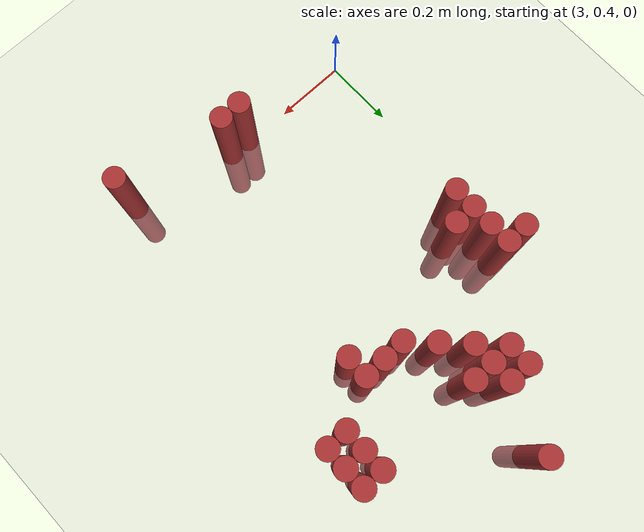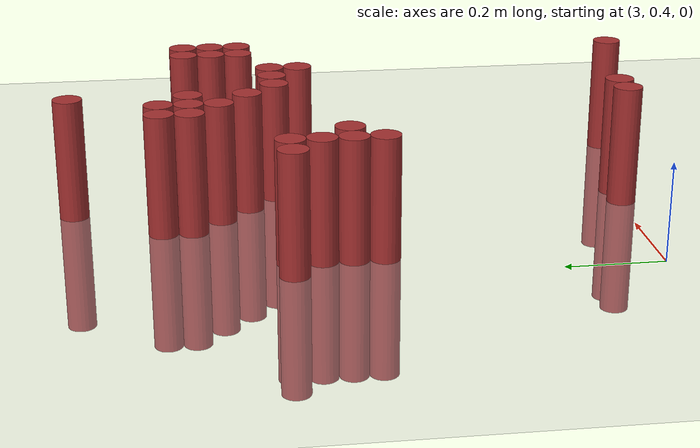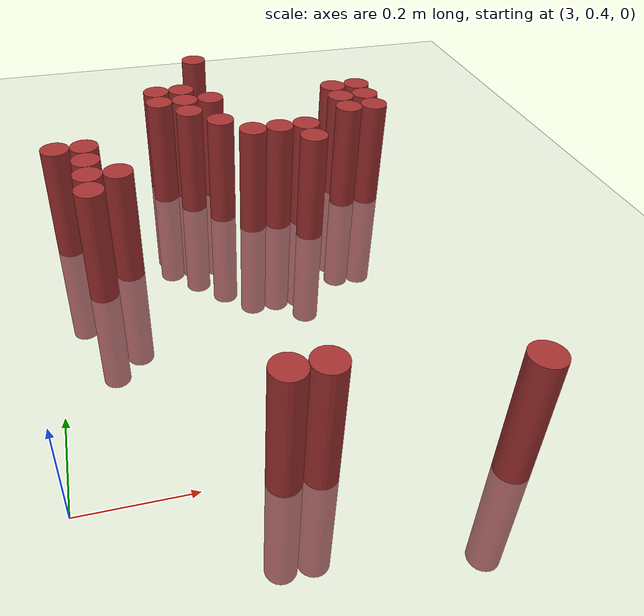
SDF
<sdf version="1.6">
 <world name="default">
  <model name="ground_plane">
   <static>1</static>
   <link name="link">
    <collision name="collision">
     <geometry><plane><normal>0 0 1</normal><size>100 100</size></plane></geometry>
     <surface><friction><ode><mu>100</mu><mu2>50</mu2></ode></friction></surface>
    </collision>
    <visual name="visual">
     <cast_shadows>0</cast_shadows>
     <geometry><plane><normal>0 0 1</normal><size>100 100</size></plane></geometry>
     <material>
      <script><uri>file://media/materials/scripts/gazebo.material</uri><name>Gazebo/Grey</name></script>
     </material>
    </visual>
   </link>
  </model>
  <model name="unit_cylinder_153">
   <static>1</static>
   <pose>3.390000 1.530000 0.000000 0.000000 0.000000 0.000000</pose>
   <link name="link">
    <inertial>
     <mass>1</mass>
     <inertia><ixx>0.145833</ixx><ixy>0</ixy><ixz>0</ixz><iyy>0.145833</iyy><iyz>0</iyz><izz>0.125</izz></inertia>
    </inertial>
    <collision name="collision">
     <geometry><cylinder><radius>0.030000</radius><length>0.5</length></cylinder></geometry>
    </collision>
    <visual name="visual">
     <geometry><cylinder><radius>0.030000</radius><length>0.5</length></cylinder></geometry>
     <material>
      <ambient>0.648000 0.192000 0.192000 1</ambient>
      <diffuse>0.648000 0.192000 0.192000 1</diffuse>
     </material>
     <material>
      <script><name>Gazebo/Grey</name><uri>file://media/materials/scripts/gazebo.material</uri></script>
     </material>
    </visual>
   </link>
  </model>
  <model name="unit_cylinder_166">
   <static>1</static>
   <pose>3.270000 1.350000 0.000000 0.000000 0.000000 0.000000</pose>
   <link name="link">
    <inertial>
     <mass>1</mass>
     <inertia><ixx>0.145833</ixx><ixy>0</ixy><ixz>0</ixz><iyy>0.145833</iyy><iyz>0</iyz><izz>0.125</izz></inertia>
    </inertial>
    <collision name="collision">
     <geometry><cylinder><radius>0.030000</radius><length>0.5</length></cylinder></geometry>
    </collision>
    <visual name="visual">
     <geometry><cylinder><radius>0.030000</radius><length>0.5</length></cylinder></geometry>
     <material>
      <ambient>0.648000 0.192000 0.192000 1</ambient>
      <diffuse>0.648000 0.192000 0.192000 1</diffuse>
     </material>
     <material>
      <script><name>Gazebo/Grey</name><uri>file://media/materials/scripts/gazebo.material</uri></script>
     </material>
    </visual>
   </link>
  </model>
  <model name="unit_cylinder_167">
   <static>1</static>
   <pose>3.330000 1.350000 0.000000 0.000000 0.000000 0.000000</pose>
   <link name="link">
    <inertial>
     <mass>1</mass>
     <inertia><ixx>0.145833</ixx><ixy>0</ixy><ixz>0</ixz><iyy>0.145833</iyy><iyz>0</iyz><izz>0.125</izz></inertia>
    </inertial>
    <collision name="collision">
     <geometry><cylinder><radius>0.030000</radius><length>0.5</length></cylinder></geometry>
    </collision>
    <visual name="visual">
     <geometry><cylinder><radius>0.030000</radius><length>0.5</length></cylinder></geometry>
     <material>
      <ambient>0.648000 0.192000 0.192000 1</ambient>
      <diffuse>0.648000 0.192000 0.192000 1</diffuse>
     </material>
     <material>
      <script><name>Gazebo/Grey</name><uri>file://media/materials/scripts/gazebo.material</uri></script>
     </material>
    </visual>
   </link>
  </model>
  <model name="unit_cylinder_169">
   <static>1</static>
   <pose>3.270000 1.290000 0.000000 0.000000 0.000000 0.000000</pose>
   <link name="link">
    <inertial>
     <mass>1</mass>
     <inertia><ixx>0.145833</ixx><ixy>0</ixy><ixz>0</ixz><iyy>0.145833</iyy><iyz>0</iyz><izz>0.125</izz></inertia>
    </inertial>
    <collision name="collision">
     <geometry><cylinder><radius>0.030000</radius><length>0.5</length></cylinder></geometry>
    </collision>
    <visual name="visual">
     <geometry><cylinder><radius>0.030000</radius><length>0.5</length></cylinder></geometry>
     <material>
      <ambient>0.648000 0.192000 0.192000 1</ambient>
      <diffuse>0.648000 0.192000 0.192000 1</diffuse>
     </material>
     <material>
      <script><name>Gazebo/Grey</name><uri>file://media/materials/scripts/gazebo.material</uri></script>
     </material>
    </visual>
   </link>
  </model>
  <model name="unit_cylinder_170">
   <static>1</static>
   <pose>3.330000 1.290000 0.000000 0.000000 0.000000 0.000000</pose>
   <link name="link">
    <inertial>
     <mass>1</mass>
     <inertia><ixx>0.145833</ixx><ixy>0</ixy><ixz>0</ixz><iyy>0.145833</iyy><iyz>0</iyz><izz>0.125</izz></inertia>
    </inertial>
    <collision name="collision">
     <geometry><cylinder><radius>0.030000</radius><length>0.5</length></cylinder></geometry>
    </collision>
    <visual name="visual">
     <geometry><cylinder><radius>0.030000</radius><length>0.5</length></cylinder></geometry>
     <material>
      <ambient>0.648000 0.192000 0.192000 1</ambient>
      <diffuse>0.648000 0.192000 0.192000 1</diffuse>
     </material>
     <material>
      <script><name>Gazebo/Grey</name><uri>file://media/materials/scripts/gazebo.material</uri></script>
     </material>
    </visual>
   </link>
  </model>
  <model name="unit_cylinder_171">
   <static>1</static>
   <pose>3.390000 1.290000 0.000000 0.000000 0.000000 0.000000</pose>
   <link name="link">
    <inertial>
     <mass>1</mass>
     <inertia><ixx>0.145833</ixx><ixy>0</ixy><ixz>0</ixz><iyy>0.145833</iyy><iyz>0</iyz><izz>0.125</izz></inertia>
    </inertial>
    <collision name="collision">
     <geometry><cylinder><radius>0.030000</radius><length>0.5</length></cylinder></geometry>
    </collision>
    <visual name="visual">
     <geometry><cylinder><radius>0.030000</radius><length>0.5</length></cylinder></geometry>
     <material>
      <ambient>0.648000 0.192000 0.192000 1</ambient>
      <diffuse>0.648000 0.192000 0.192000 1</diffuse>
     </material>
     <material>
      <script><name>Gazebo/Grey</name><uri>file://media/materials/scripts/gazebo.material</uri></script>
     </material>
    </visual>
   </link>
  </model>
  <model name="unit_cylinder_172">
   <static>1</static>
   <pose>3.690000 1.290000 0.000000 0.000000 0.000000 0.000000</pose>
   <link name="link">
    <inertial>
     <mass>1</mass>
     <inertia><ixx>0.145833</ixx><ixy>0</ixy><ixz>0</ixz><iyy>0.145833</iyy><iyz>0</iyz><izz>0.125</izz></inertia>
    </inertial>
    <collision name="collision">
     <geometry><cylinder><radius>0.030000</radius><length>0.5</length></cylinder></geometry>
    </collision>
    <visual name="visual">
     <geometry><cylinder><radius>0.030000</radius><length>0.5</length></cylinder></geometry>
     <material>
      <ambient>0.648000 0.192000 0.192000 1</ambient>
      <diffuse>0.648000 0.192000 0.192000 1</diffuse>
     </material>
     <material>
      <script><name>Gazebo/Grey</name><uri>file://media/materials/scripts/gazebo.material</uri></script>
     </material>
    </visual>
   </link>
  </model>
  <model name="unit_cylinder_173">
   <static>1</static>
   <pose>3.750000 1.290000 0.000000 0.000000 0.000000 0.000000</pose>
   <link name="link">
    <inertial>
     <mass>1</mass>
     <inertia><ixx>0.145833</ixx><ixy>0</ixy><ixz>0</ixz><iyy>0.145833</iyy><iyz>0</iyz><izz>0.125</izz></inertia>
    </inertial>
    <collision name="collision">
     <geometry><cylinder><radius>0.030000</radius><length>0.5</length></cylinder></geometry>
    </collision>
    <visual name="visual">
     <geometry><cylinder><radius>0.030000</radius><length>0.5</length></cylinder></geometry>
     <material>
      <ambient>0.648000 0.192000 0.192000 1</ambient>
      <diffuse>0.648000 0.192000 0.192000 1</diffuse>
     </material>
     <material>
      <script><name>Gazebo/Grey</name><uri>file://media/materials/scripts/gazebo.material</uri></script>
     </material>
    </visual>
   </link>
  </model>
  <model name="unit_cylinder_174">
   <static>1</static>
   <pose>3.330000 1.230000 0.000000 0.000000 0.000000 0.000000</pose>
   <link name="link">
    <inertial>
     <mass>1</mass>
     <inertia><ixx>0.145833</ixx><ixy>0</ixy><ixz>0</ixz><iyy>0.145833</iyy><iyz>0</iyz><izz>0.125</izz></inertia>
    </inertial>
    <collision name="collision">
     <geometry><cylinder><radius>0.030000</radius><length>0.5</length></cylinder></geometry>
    </collision>
    <visual name="visual">
     <geometry><cylinder><radius>0.030000</radius><length>0.5</length></cylinder></geometry>
     <material>
      <ambient>0.648000 0.192000 0.192000 1</ambient>
      <diffuse>0.648000 0.192000 0.192000 1</diffuse>
     </material>
     <material>
      <script><name>Gazebo/Grey</name><uri>file://media/materials/scripts/gazebo.material</uri></script>
     </material>
    </visual>
   </link>
  </model>
  <model name="unit_cylinder_175">
   <static>1</static>
   <pose>3.690000 1.230000 0.000000 0.000000 0.000000 0.000000</pose>
   <link name="link">
    <inertial>
     <mass>1</mass>
     <inertia><ixx>0.145833</ixx><ixy>0</ixy><ixz>0</ixz><iyy>0.145833</iyy><iyz>0</iyz><izz>0.125</izz></inertia>
    </inertial>
    <collision name="collision">
     <geometry><cylinder><radius>0.030000</radius><length>0.5</length></cylinder></geometry>
    </collision>
    <visual name="visual">
     <geometry><cylinder><radius>0.030000</radius><length>0.5</length></cylinder></geometry>
     <material>
      <ambient>0.648000 0.192000 0.192000 1</ambient>
      <diffuse>0.648000 0.192000 0.192000 1</diffuse>
     </material>
     <material>
      <script><name>Gazebo/Grey</name><uri>file://media/materials/scripts/gazebo.material</uri></script>
     </material>
    </visual>
   </link>
  </model>
  <model name="unit_cylinder_176">
   <static>1</static>
   <pose>3.750000 1.230000 0.000000 0.000000 0.000000 0.000000</pose>
   <link name="link">
    <inertial>
     <mass>1</mass>
     <inertia><ixx>0.145833</ixx><ixy>0</ixy><ixz>0</ixz><iyy>0.145833</iyy><iyz>0</iyz><izz>0.125</izz></inertia>
    </inertial>
    <collision name="collision">
     <geometry><cylinder><radius>0.030000</radius><length>0.5</length></cylinder></geometry>
    </collision>
    <visual name="visual">
     <geometry><cylinder><radius>0.030000</radius><length>0.5</length></cylinder></geometry>
     <material>
      <ambient>0.648000 0.192000 0.192000 1</ambient>
      <diffuse>0.648000 0.192000 0.192000 1</diffuse>
     </material>
     <material>
      <script><name>Gazebo/Grey</name><uri>file://media/materials/scripts/gazebo.material</uri></script>
     </material>
    </visual>
   </link>
  </model>
  <model name="unit_cylinder_179">
   <static>1</static>
   <pose>3.390000 1.170000 0.000000 0.000000 0.000000 0.000000</pose>
   <link name="link">
    <inertial>
     <mass>1</mass>
     <inertia><ixx>0.145833</ixx><ixy>0</ixy><ixz>0</ixz><iyy>0.145833</iyy><iyz>0</iyz><izz>0.125</izz></inertia>
    </inertial>
    <collision name="collision">
     <geometry><cylinder><radius>0.030000</radius><length>0.5</length></cylinder></geometry>
    </collision>
    <visual name="visual">
     <geometry><cylinder><radius>0.030000</radius><length>0.5</length></cylinder></geometry>
     <material>
      <ambient>0.648000 0.192000 0.192000 1</ambient>
      <diffuse>0.648000 0.192000 0.192000 1</diffuse>
     </material>
     <material>
      <script><name>Gazebo/Grey</name><uri>file://media/materials/scripts/gazebo.material</uri></script>
     </material>
    </visual>
   </link>
  </model>
  <model name="unit_cylinder_180">
   <static>1</static>
   <pose>3.690000 1.170000 0.000000 0.000000 0.000000 0.000000</pose>
   <link name="link">
    <inertial>
     <mass>1</mass>
     <inertia><ixx>0.145833</ixx><ixy>0</ixy><ixz>0</ixz><iyy>0.145833</iyy><iyz>0</iyz><izz>0.125</izz></inertia>
    </inertial>
    <collision name="collision">
     <geometry><cylinder><radius>0.030000</radius><length>0.5</length></cylinder></geometry>
    </collision>
    <visual name="visual">
     <geometry><cylinder><radius>0.030000</radius><length>0.5</length></cylinder></geometry>
     <material>
      <ambient>0.648000 0.192000 0.192000 1</ambient>
      <diffuse>0.648000 0.192000 0.192000 1</diffuse>
     </material>
     <material>
      <script><name>Gazebo/Grey</name><uri>file://media/materials/scripts/gazebo.material</uri></script>
     </material>
    </visual>
   </link>
  </model>
  <model name="unit_cylinder_181">
   <static>1</static>
   <pose>3.750000 1.170000 0.000000 0.000000 0.000000 0.000000</pose>
   <link name="link">
    <inertial>
     <mass>1</mass>
     <inertia><ixx>0.145833</ixx><ixy>0</ixy><ixz>0</ixz><iyy>0.145833</iyy><iyz>0</iyz><izz>0.125</izz></inertia>
    </inertial>
    <collision name="collision">
     <geometry><cylinder><radius>0.030000</radius><length>0.5</length></cylinder></geometry>
    </collision>
    <visual name="visual">
     <geometry><cylinder><radius>0.030000</radius><length>0.5</length></cylinder></geometry>
     <material>
      <ambient>0.648000 0.192000 0.192000 1</ambient>
      <diffuse>0.648000 0.192000 0.192000 1</diffuse>
     </material>
     <material>
      <script><name>Gazebo/Grey</name><uri>file://media/materials/scripts/gazebo.material</uri></script>
     </material>
    </visual>
   </link>
  </model>
  <model name="unit_cylinder_184">
   <static>1</static>
   <pose>3.030000 1.110000 0.000000 0.000000 0.000000 0.000000</pose>
   <link name="link">
    <inertial>
     <mass>1</mass>
     <inertia><ixx>0.145833</ixx><ixy>0</ixy><ixz>0</ixz><iyy>0.145833</iyy><iyz>0</iyz><izz>0.125</izz></inertia>
    </inertial>
    <collision name="collision">
     <geometry><cylinder><radius>0.030000</radius><length>0.5</length></cylinder></geometry>
    </collision>
    <visual name="visual">
     <geometry><cylinder><radius>0.030000</radius><length>0.5</length></cylinder></geometry>
     <material>
      <ambient>0.648000 0.192000 0.192000 1</ambient>
      <diffuse>0.648000 0.192000 0.192000 1</diffuse>
     </material>
     <material>
      <script><name>Gazebo/Grey</name><uri>file://media/materials/scripts/gazebo.material</uri></script>
     </material>
    </visual>
   </link>
  </model>
  <model name="unit_cylinder_185">
   <static>1</static>
   <pose>3.090000 1.110000 0.000000 0.000000 0.000000 0.000000</pose>
   <link name="link">
    <inertial>
     <mass>1</mass>
     <inertia><ixx>0.145833</ixx><ixy>0</ixy><ixz>0</ixz><iyy>0.145833</iyy><iyz>0</iyz><izz>0.125</izz></inertia>
    </inertial>
    <collision name="collision">
     <geometry><cylinder><radius>0.030000</radius><length>0.5</length></cylinder></geometry>
    </collision>
    <visual name="visual">
     <geometry><cylinder><radius>0.030000</radius><length>0.5</length></cylinder></geometry>
     <material>
      <ambient>0.648000 0.192000 0.192000 1</ambient>
      <diffuse>0.648000 0.192000 0.192000 1</diffuse>
     </material>
     <material>
      <script><name>Gazebo/Grey</name><uri>file://media/materials/scripts/gazebo.material</uri></script>
     </material>
    </visual>
   </link>
  </model>
  <model name="unit_cylinder_186">
   <static>1</static>
   <pose>3.450000 1.110000 0.000000 0.000000 0.000000 0.000000</pose>
   <link name="link">
    <inertial>
     <mass>1</mass>
     <inertia><ixx>0.145833</ixx><ixy>0</ixy><ixz>0</ixz><iyy>0.145833</iyy><iyz>0</iyz><izz>0.125</izz></inertia>
    </inertial>
    <collision name="collision">
     <geometry><cylinder><radius>0.030000</radius><length>0.5</length></cylinder></geometry>
    </collision>
    <visual name="visual">
     <geometry><cylinder><radius>0.030000</radius><length>0.5</length></cylinder></geometry>
     <material>
      <ambient>0.648000 0.192000 0.192000 1</ambient>
      <diffuse>0.648000 0.192000 0.192000 1</diffuse>
     </material>
     <material>
      <script><name>Gazebo/Grey</name><uri>file://media/materials/scripts/gazebo.material</uri></script>
     </material>
    </visual>
   </link>
  </model>
  <model name="unit_cylinder_187">
   <static>1</static>
   <pose>3.510000 1.110000 0.000000 0.000000 0.000000 0.000000</pose>
   <link name="link">
    <inertial>
     <mass>1</mass>
     <inertia><ixx>0.145833</ixx><ixy>0</ixy><ixz>0</ixz><iyy>0.145833</iyy><iyz>0</iyz><izz>0.125</izz></inertia>
    </inertial>
    <collision name="collision">
     <geometry><cylinder><radius>0.030000</radius><length>0.5</length></cylinder></geometry>
    </collision>
    <visual name="visual">
     <geometry><cylinder><radius>0.030000</radius><length>0.5</length></cylinder></geometry>
     <material>
      <ambient>0.648000 0.192000 0.192000 1</ambient>
      <diffuse>0.648000 0.192000 0.192000 1</diffuse>
     </material>
     <material>
      <script><name>Gazebo/Grey</name><uri>file://media/materials/scripts/gazebo.material</uri></script>
     </material>
    </visual>
   </link>
  </model>
  <model name="unit_cylinder_188">
   <static>1</static>
   <pose>3.570000 1.110000 0.000000 0.000000 0.000000 0.000000</pose>
   <link name="link">
    <inertial>
     <mass>1</mass>
     <inertia><ixx>0.145833</ixx><ixy>0</ixy><ixz>0</ixz><iyy>0.145833</iyy><iyz>0</iyz><izz>0.125</izz></inertia>
    </inertial>
    <collision name="collision">
     <geometry><cylinder><radius>0.030000</radius><length>0.5</length></cylinder></geometry>
    </collision>
    <visual name="visual">
     <geometry><cylinder><radius>0.030000</radius><length>0.5</length></cylinder></geometry>
     <material>
      <ambient>0.648000 0.192000 0.192000 1</ambient>
      <diffuse>0.648000 0.192000 0.192000 1</diffuse>
     </material>
     <material>
      <script><name>Gazebo/Grey</name><uri>file://media/materials/scripts/gazebo.material</uri></script>
     </material>
    </visual>
   </link>
  </model>
  <model name="unit_cylinder_193">
   <static>1</static>
   <pose>3.090000 1.050000 0.000000 0.000000 0.000000 0.000000</pose>
   <link name="link">
    <inertial>
     <mass>1</mass>
     <inertia><ixx>0.145833</ixx><ixy>0</ixy><ixz>0</ixz><iyy>0.145833</iyy><iyz>0</iyz><izz>0.125</izz></inertia>
    </inertial>
    <collision name="collision">
     <geometry><cylinder><radius>0.030000</radius><length>0.5</length></cylinder></geometry>
    </collision>
    <visual name="visual">
     <geometry><cylinder><radius>0.030000</radius><length>0.5</length></cylinder></geometry>
     <material>
      <ambient>0.648000 0.192000 0.192000 1</ambient>
      <diffuse>0.648000 0.192000 0.192000 1</diffuse>
     </material>
     <material>
      <script><name>Gazebo/Grey</name><uri>file://media/materials/scripts/gazebo.material</uri></script>
     </material>
    </visual>
   </link>
  </model>
  <model name="unit_cylinder_194">
   <static>1</static>
   <pose>3.570000 1.050000 0.000000 0.000000 0.000000 0.000000</pose>
   <link name="link">
    <inertial>
     <mass>1</mass>
     <inertia><ixx>0.145833</ixx><ixy>0</ixy><ixz>0</ixz><iyy>0.145833</iyy><iyz>0</iyz><izz>0.125</izz></inertia>
    </inertial>
    <collision name="collision">
     <geometry><cylinder><radius>0.030000</radius><length>0.5</length></cylinder></geometry>
    </collision>
    <visual name="visual">
     <geometry><cylinder><radius>0.030000</radius><length>0.5</length></cylinder></geometry>
     <material>
      <ambient>0.648000 0.192000 0.192000 1</ambient>
      <diffuse>0.648000 0.192000 0.192000 1</diffuse>
     </material>
     <material>
      <script><name>Gazebo/Grey</name><uri>file://media/materials/scripts/gazebo.material</uri></script>
     </material>
    </visual>
   </link>
  </model>
  <model name="unit_cylinder_197">
   <static>1</static>
   <pose>3.090000 0.990000 0.000000 0.000000 0.000000 0.000000</pose>
   <link name="link">
    <inertial>
     <mass>1</mass>
     <inertia><ixx>0.145833</ixx><ixy>0</ixy><ixz>0</ixz><iyy>0.145833</iyy><iyz>0</iyz><izz>0.125</izz></inertia>
    </inertial>
    <collision name="collision">
     <geometry><cylinder><radius>0.030000</radius><length>0.5</length></cylinder></geometry>
    </collision>
    <visual name="visual">
     <geometry><cylinder><radius>0.030000</radius><length>0.5</length></cylinder></geometry>
     <material>
      <ambient>0.648000 0.192000 0.192000 1</ambient>
      <diffuse>0.648000 0.192000 0.192000 1</diffuse>
     </material>
     <material>
      <script><name>Gazebo/Grey</name><uri>file://media/materials/scripts/gazebo.material</uri></script>
     </material>
    </visual>
   </link>
  </model>
  <model name="unit_cylinder_198">
   <static>1</static>
   <pose>3.150000 0.990000 0.000000 0.000000 0.000000 0.000000</pose>
   <link name="link">
    <inertial>
     <mass>1</mass>
     <inertia><ixx>0.145833</ixx><ixy>0</ixy><ixz>0</ixz><iyy>0.145833</iyy><iyz>0</iyz><izz>0.125</izz></inertia>
    </inertial>
    <collision name="collision">
     <geometry><cylinder><radius>0.030000</radius><length>0.5</length></cylinder></geometry>
    </collision>
    <visual name="visual">
     <geometry><cylinder><radius>0.030000</radius><length>0.5</length></cylinder></geometry>
     <material>
      <ambient>0.648000 0.192000 0.192000 1</ambient>
      <diffuse>0.648000 0.192000 0.192000 1</diffuse>
     </material>
     <material>
      <script><name>Gazebo/Grey</name><uri>file://media/materials/scripts/gazebo.material</uri></script>
     </material>
    </visual>
   </link>
  </model>
  <model name="unit_cylinder_201">
   <static>1</static>
   <pose>3.090000 0.930000 0.000000 0.000000 0.000000 0.000000</pose>
   <link name="link">
    <inertial>
     <mass>1</mass>
     <inertia><ixx>0.145833</ixx><ixy>0</ixy><ixz>0</ixz><iyy>0.145833</iyy><iyz>0</iyz><izz>0.125</izz></inertia>
    </inertial>
    <collision name="collision">
     <geometry><cylinder><radius>0.030000</radius><length>0.5</length></cylinder></geometry>
    </collision>
    <visual name="visual">
     <geometry><cylinder><radius>0.030000</radius><length>0.5</length></cylinder></geometry>
     <material>
      <ambient>0.648000 0.192000 0.192000 1</ambient>
      <diffuse>0.648000 0.192000 0.192000 1</diffuse>
     </material>
     <material>
      <script><name>Gazebo/Grey</name><uri>file://media/materials/scripts/gazebo.material</uri></script>
     </material>
    </visual>
   </link>
  </model>
  <model name="unit_cylinder_212">
   <static>1</static>
   <pose>3.330000 0.390000 0.000000 0.000000 0.000000 0.000000</pose>
   <link name="link">
    <inertial>
     <mass>1</mass>
     <inertia><ixx>0.145833</ixx><ixy>0</ixy><ixz>0</ixz><iyy>0.145833</iyy><iyz>0</iyz><izz>0.125</izz></inertia>
    </inertial>
    <collision name="collision">
     <geometry><cylinder><radius>0.030000</radius><length>0.5</length></cylinder></geometry>
    </collision>
    <visual name="visual">
     <geometry><cylinder><radius>0.030000</radius><length>0.5</length></cylinder></geometry>
     <material>
      <ambient>0.648000 0.192000 0.192000 1</ambient>
      <diffuse>0.648000 0.192000 0.192000 1</diffuse>
     </material>
     <material>
      <script><name>Gazebo/Grey</name><uri>file://media/materials/scripts/gazebo.material</uri></script>
     </material>
    </visual>
   </link>
  </model>
  <model name="unit_cylinder_213">
   <static>1</static>
   <pose>3.390000 0.390000 0.000000 0.000000 0.000000 0.000000</pose>
   <link name="link">
    <inertial>
     <mass>1</mass>
     <inertia><ixx>0.145833</ixx><ixy>0</ixy><ixz>0</ixz><iyy>0.145833</iyy><iyz>0</iyz><izz>0.125</izz></inertia>
    </inertial>
    <collision name="collision">
     <geometry><cylinder><radius>0.030000</radius><length>0.5</length></cylinder></geometry>
    </collision>
    <visual name="visual">
     <geometry><cylinder><radius>0.030000</radius><length>0.5</length></cylinder></geometry>
     <material>
      <ambient>0.648000 0.192000 0.192000 1</ambient>
      <diffuse>0.648000 0.192000 0.192000 1</diffuse>
     </material>
     <material>
      <script><name>Gazebo/Grey</name><uri>file://media/materials/scripts/gazebo.material</uri></script>
     </material>
    </visual>
   </link>
  </model>
  <model name="unit_cylinder_219">
   <static>1</static>
   <pose>3.690000 0.330000 0.000000 0.000000 0.000000 0.000000</pose>
   <link name="link">
    <inertial>
     <mass>1</mass>
     <inertia><ixx>0.145833</ixx><ixy>0</ixy><ixz>0</ixz><iyy>0.145833</iyy><iyz>0</iyz><izz>0.125</izz></inertia>
    </inertial>
    <collision name="collision">
     <geometry><cylinder><radius>0.030000</radius><length>0.5</length></cylinder></geometry>
    </collision>
    <visual name="visual">
     <geometry><cylinder><radius>0.030000</radius><length>0.5</length></cylinder></geometry>
     <material>
      <ambient>0.648000 0.192000 0.192000 1</ambient>
      <diffuse>0.648000 0.192000 0.192000 1</diffuse>
     </material>
     <material>
      <script><name>Gazebo/Grey</name><uri>file://media/materials/scripts/gazebo.material</uri></script>
     </material>
    </visual>
   </link>
  </model>
 </world>
</sdf>
